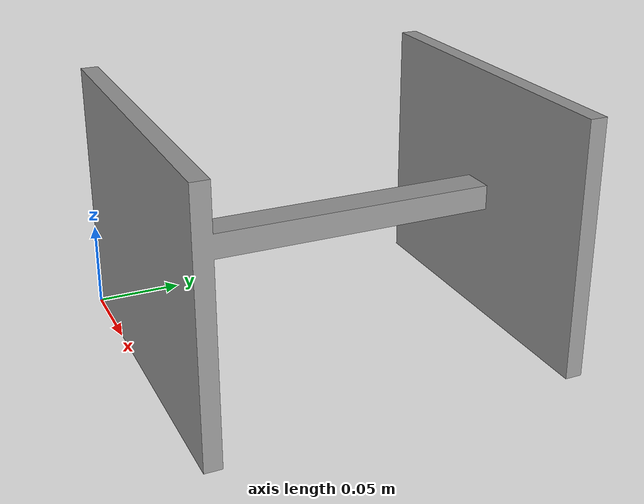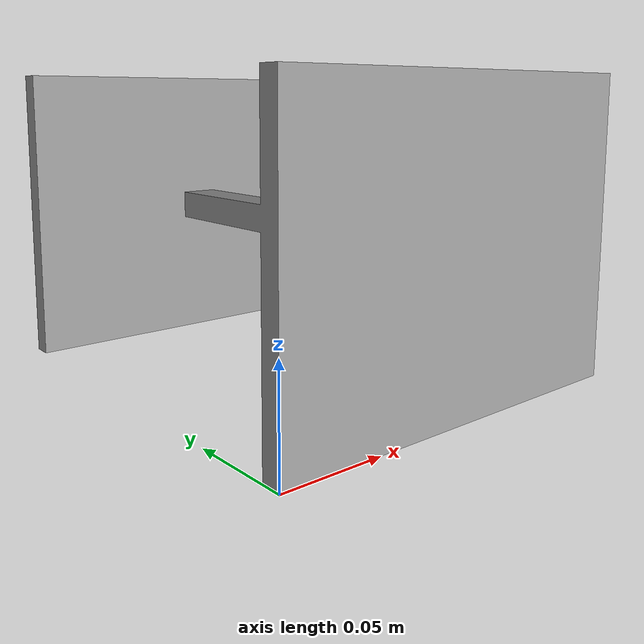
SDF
<?xml version="1.0" ?>
<sdf version="1.5">
  <model name="bunch">
    <static>false</static>
    <link name="link">

	<inertial>
                <pose>0.1 0.11 0.075 0 0 0</pose>
                <inertia>
                    <ixx>0.001</ixx>
                    <ixy>0</ixy>
                    <ixz>0</ixz>
                    <iyy>0.001</iyy>
                    <iyz>0</iyz>
                    <izz>0.001</izz>
                </inertia>
                <mass>1</mass>
            </inertial>

	<collision name="collision">
        <geometry>
          <mesh>
            <uri>model://bunch/meshes/treepart2.STL</uri>
            <scale>0.001 0.001 0.001</scale>
          </mesh>
        </geometry>
        <surface>
          <friction>
            <ode>
              <mu>1000</mu>
              <mu2>500</mu2>
            </ode>
          </friction>
        </surface>
      </collision>
      <visual name="visual">
        <cast_shadows>false</cast_shadows>
        <geometry>
          <mesh>
            <uri>model://bunch/meshes/treepart2.STL</uri>
            <scale>0.001 0.001 0.001</scale>
          </mesh>
        </geometry>
        <material>
          <script>
            <uri>file://media/materials/scripts/gazebo.material</uri>
            <name>Gazebo/Grey</name>
          </script>
        </material>
      </visual>
    </link>
  </model>
</sdf>
